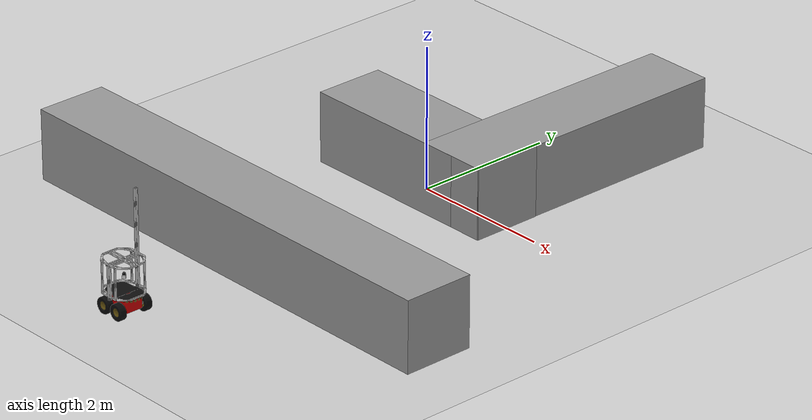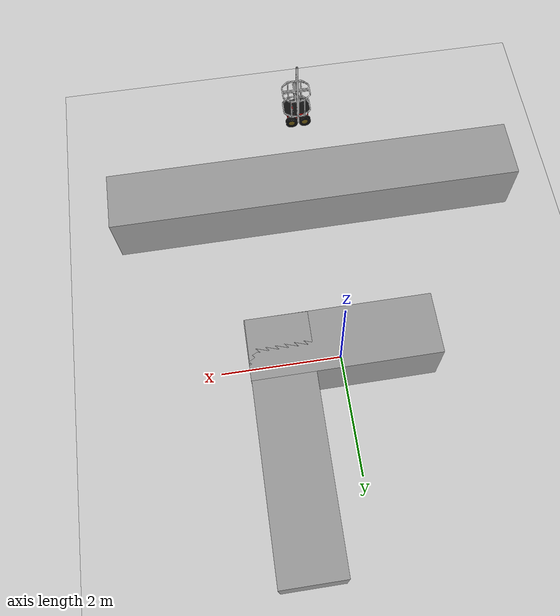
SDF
<sdf version="1.6">
 <world name="default">
  <light name="sun" type="directional">
   <pose>0 0 10 0 -0 0</pose>
   <diffuse>0.8 0.8 0.8 1</diffuse>
   <specular>0.2 0.2 0.2 1</specular>
   <attenuation>
    <range>1000</range>
    <constant>0.9</constant>
    <linear>0.01</linear>
    <quadratic>0.001</quadratic>
   </attenuation>
   <direction>-0.5 0.1 -0.9</direction>
  </light>
  <model name="ground_plane">
   <static>1</static>
   <link name="link">
    <collision name="collision">
     <geometry><plane><normal>0 0 1</normal><size>100 100</size></plane></geometry>
     <surface>
      <contact><collide_bitmask>65535</collide_bitmask></contact>
      <friction><ode><mu>100</mu><mu2>50</mu2></ode></friction>
     </surface>
    </collision>
    <visual name="visual">
     <cast_shadows>0</cast_shadows>
     <geometry><plane><normal>0 0 1</normal><size>100 100</size></plane></geometry>
     <material>
      <script><uri>file://media/materials/scripts/gazebo.material</uri><name>Gazebo/Grey</name></script>
     </material>
    </visual>
   </link>
  </model>
  <gravity>0 0 -9.8</gravity>
  <magnetic_field>6e-06 2.3e-05 -4.2e-05</magnetic_field>
  <atmosphere type="adiabatic"/>
  <physics name="default_physics" default="0" type="ode">
   <max_step_size>0.001</max_step_size>
   <real_time_factor>1</real_time_factor>
   <real_time_update_rate>1000</real_time_update_rate>
  </physics>
  <scene><ambient>0.4 0.4 0.4 1</ambient><background>0.7 0.7 0.7 1</background><shadows>1</shadows></scene>
  <audio><device>default</device></audio>
  <spherical_coordinates>
   <surface_model>EARTH_WGS84</surface_model>
   <latitude_deg>0</latitude_deg>
   <longitude_deg>0</longitude_deg>
   <elevation>0</elevation>
   <heading_deg>0</heading_deg>
  </spherical_coordinates>
  <model name="pioneer3at_rc2016_robot_with_flame">
   <link name="base_link">
    <inertial>
     <pose>0.001277 0.003784 0.183869 0 -0 0</pose>
     <mass>14.27</mass>
     <inertia>
      <ixx>0.192883</ixx>
      <ixy>-0.00357616</ixy>
      <ixz>-0.0064908</ixz>
      <iyy>0.371329</iyy>
      <iyz>-0.019232</iyz>
      <izz>0.4098</izz>
     </inertia>
    </inertial>
    <sensor name="hokuyo" type="ray">
     <always_on>0</always_on>
     <update_rate>30</update_rate>
     <visualize>1</visualize>
     <ray>
      <scan>
       <horizontal>
        <samples>180</samples>
        <resolution>1</resolution>
        <min_angle>-3.1415</min_angle>
        <max_angle>3.1415</max_angle>
       </horizontal>
       <vertical><samples>1</samples><min_angle>0</min_angle><max_angle>0</max_angle></vertical>
      </scan>
      <range><min>0.08</min><max>2</max><resolution>0.01</resolution></range>
     </ray>
     <plugin name="gazebo_ros_hokuyo_controller" filename="libgazebo_ros_laser.so">
      <gaussianNoise>0.005</gaussianNoise>
      <alwaysOn>0</alwaysOn>
      <updateRate>30</updateRate>
      <topicName>hokuyo</topicName>
      <frameName>hokuyo_frame</frameName>
      <robotNamespace>robot</robotNamespace>
     </plugin>
     <pose>0 0 0.5 0 -0 0</pose>
    </sensor>
    <visual name="base_link_fixed_joint_lump__base_visual_visual">
     <pose>0 0 0.18 0 -0 0</pose>
     <geometry><mesh><scale>1 1 1</scale><uri>model://pioneer3at/meshes/chassis.dae</uri></mesh></geometry>
    </visual>
    <visual name="base_link_fixed_joint_lump__flame_visual_2">
     <pose>0 -0.241 0.29 1.5707 0 1.5707</pose>
     <geometry>
      <mesh><scale>1 1 1</scale><uri>/home/z_lin/p3at/src/p3at/p3at_description/meshes/flame 0.01.stl</uri></mesh>
     </geometry>
    </visual>
    <visual name="base_link_fixed_joint_lump__hokuyo_frame_visual_3">
     <pose>0 0 0.5 0 -0 0.785398</pose>
     <geometry><mesh><scale>1 1 1</scale><uri>model://hokuyo/meshes/hokuyo.dae</uri></mesh></geometry>
     <material><script><uri>__default__</uri><name>__default__</name></script></material>
    </visual>
    <collision name="base_link_collision">
     <pose>0 0 0.18 0 -0 0</pose>
     <geometry><box><size>0.501 0.3 0.19</size></box></geometry>
     <surface>
      <friction>
       <ode><mu>1</mu><mu2>1</mu2><fdir1>0 0 0</fdir1><slip1>0</slip1><slip2>0</slip2></ode>
       <torsional>
        <coefficient>1</coefficient>
        <patch_radius>0</patch_radius>
        <surface_radius>0</surface_radius>
        <use_patch_radius>1</use_patch_radius>
        <ode><slip>0</slip></ode>
       </torsional>
      </friction>
      <bounce><restitution_coefficient>0</restitution_coefficient><threshold>1e+06</threshold></bounce>
      <contact>
       <collide_without_contact>0</collide_without_contact>
       <collide_without_contact_bitmask>1</collide_without_contact_bitmask>
       <collide_bitmask>1</collide_bitmask>
       <ode>
        <soft_cfm>0</soft_cfm>
        <soft_erp>0.2</soft_erp>
        <kp>1e+13</kp>
        <kd>1</kd>
        <max_vel>0.01</max_vel>
        <min_depth>0</min_depth>
       </ode>
       <bullet>
        <split_impulse>1</split_impulse>
        <split_impulse_penetration_threshold>-0.01</split_impulse_penetration_threshold>
        <soft_cfm>0</soft_cfm>
        <soft_erp>0.2</soft_erp>
        <kp>1e+13</kp>
        <kd>1</kd>
       </bullet>
      </contact>
     </surface>
    </collision>
    <collision name="base_link_fixed_joint_lump__flame_collision_2">
     <pose>0 -0.241 0.29 0 -0 0</pose>
     <geometry><box><size>0 0 0</size></box></geometry>
     <surface>
      <friction>
       <ode><mu>1</mu><mu2>1</mu2><fdir1>0 0 0</fdir1><slip1>0</slip1><slip2>0</slip2></ode>
       <torsional>
        <coefficient>1</coefficient>
        <patch_radius>0</patch_radius>
        <surface_radius>0</surface_radius>
        <use_patch_radius>1</use_patch_radius>
        <ode><slip>0</slip></ode>
       </torsional>
      </friction>
      <bounce><restitution_coefficient>0</restitution_coefficient><threshold>1e+06</threshold></bounce>
      <contact>
       <collide_without_contact>0</collide_without_contact>
       <collide_without_contact_bitmask>1</collide_without_contact_bitmask>
       <collide_bitmask>1</collide_bitmask>
       <ode>
        <soft_cfm>0</soft_cfm>
        <soft_erp>0.2</soft_erp>
        <kp>1e+13</kp>
        <kd>1</kd>
        <max_vel>0.01</max_vel>
        <min_depth>0</min_depth>
       </ode>
       <bullet>
        <split_impulse>1</split_impulse>
        <split_impulse_penetration_threshold>-0.01</split_impulse_penetration_threshold>
        <soft_cfm>0</soft_cfm>
        <soft_erp>0.2</soft_erp>
        <kp>1e+13</kp>
        <kd>1</kd>
       </bullet>
      </contact>
     </surface>
    </collision>
    <collision name="base_link_fixed_joint_lump__hokuyo_frame_collision_3">
     <pose>0 0 0.5 0 -0 0.785398</pose>
     <geometry><box><size>0.058 0.058 0.087</size></box></geometry>
     <surface>
      <friction>
       <ode><mu>1</mu><mu2>1</mu2><fdir1>0 0 0</fdir1><slip1>0</slip1><slip2>0</slip2></ode>
       <torsional>
        <coefficient>1</coefficient>
        <patch_radius>0</patch_radius>
        <surface_radius>0</surface_radius>
        <use_patch_radius>1</use_patch_radius>
        <ode><slip>0</slip></ode>
       </torsional>
      </friction>
      <bounce><restitution_coefficient>0</restitution_coefficient><threshold>1e+06</threshold></bounce>
      <contact>
       <collide_without_contact>0</collide_without_contact>
       <collide_without_contact_bitmask>1</collide_without_contact_bitmask>
       <collide_bitmask>1</collide_bitmask>
       <ode>
        <soft_cfm>0</soft_cfm>
        <soft_erp>0.2</soft_erp>
        <kp>1e+13</kp>
        <kd>1</kd>
        <max_vel>0.01</max_vel>
        <min_depth>0</min_depth>
       </ode>
       <bullet>
        <split_impulse>1</split_impulse>
        <split_impulse_penetration_threshold>-0.01</split_impulse_penetration_threshold>
        <soft_cfm>0</soft_cfm>
        <soft_erp>0.2</soft_erp>
        <kp>1e+13</kp>
        <kd>1</kd>
       </bullet>
      </contact>
     </surface>
    </collision>
   </link>
   <link name="p3at_front_left_wheel">
    <pose>0.125 0.201 0.11 1.5707 -0 0</pose>
    <inertial>
     <mass>1.5</mass>
     <inertia>
      <ixx>0.00524062</ixx>
      <ixy>0</ixy>
      <ixz>0</ixz>
      <iyy>0.00524062</iyy>
      <iyz>0</iyz>
      <izz>0.009075</izz>
     </inertia>
    </inertial>
    <visual name="p3at_front_left_wheel_fixed_joint_lump__visual_visual">
     <geometry><mesh><scale>1 1 1</scale><uri>model://pioneer3at/meshes/wheel.dae</uri></mesh></geometry>
    </visual>
    <collision name="p3at_front_left_wheel_collision">
     <geometry><cylinder><radius>0.11</radius><length>0.075</length></cylinder></geometry>
     <surface>
      <friction>
       <ode><mu>1</mu><mu2>1</mu2><fdir1>0 0 0</fdir1><slip1>0</slip1><slip2>0</slip2></ode>
       <torsional>
        <coefficient>1</coefficient>
        <patch_radius>0</patch_radius>
        <surface_radius>0</surface_radius>
        <use_patch_radius>1</use_patch_radius>
        <ode><slip>0</slip></ode>
       </torsional>
      </friction>
      <bounce><restitution_coefficient>0</restitution_coefficient><threshold>1e+06</threshold></bounce>
      <contact>
       <collide_without_contact>0</collide_without_contact>
       <collide_without_contact_bitmask>1</collide_without_contact_bitmask>
       <collide_bitmask>1</collide_bitmask>
       <ode>
        <soft_cfm>0</soft_cfm>
        <soft_erp>0.2</soft_erp>
        <kp>1e+13</kp>
        <kd>1</kd>
        <max_vel>0.01</max_vel>
        <min_depth>0</min_depth>
       </ode>
       <bullet>
        <split_impulse>1</split_impulse>
        <split_impulse_penetration_threshold>-0.01</split_impulse_penetration_threshold>
        <soft_cfm>0</soft_cfm>
        <soft_erp>0.2</soft_erp>
        <kp>1e+13</kp>
        <kd>1</kd>
       </bullet>
      </contact>
     </surface>
    </collision>
   </link>
   <link name="p3at_front_right_wheel">
    <pose>0.125 -0.201 0.11 1.5707 -0 0</pose>
    <inertial>
     <mass>1.5</mass>
     <inertia>
      <ixx>0.00524062</ixx>
      <ixy>0</ixy>
      <ixz>0</ixz>
      <iyy>0.00524062</iyy>
      <iyz>0</iyz>
      <izz>0.009075</izz>
     </inertia>
    </inertial>
    <visual name="p3at_front_right_wheel_fixed_joint_lump__visual_visual">
     <geometry><mesh><scale>1 1 1</scale><uri>model://pioneer3at/meshes/wheel.dae</uri></mesh></geometry>
    </visual>
    <collision name="p3at_front_right_wheel_collision">
     <geometry><cylinder><radius>0.11</radius><length>0.075</length></cylinder></geometry>
     <surface>
      <friction>
       <ode><mu>1</mu><mu2>1</mu2><fdir1>0 0 0</fdir1><slip1>0</slip1><slip2>0</slip2></ode>
       <torsional>
        <coefficient>1</coefficient>
        <patch_radius>0</patch_radius>
        <surface_radius>0</surface_radius>
        <use_patch_radius>1</use_patch_radius>
        <ode><slip>0</slip></ode>
       </torsional>
      </friction>
      <bounce><restitution_coefficient>0</restitution_coefficient><threshold>1e+06</threshold></bounce>
      <contact>
       <collide_without_contact>0</collide_without_contact>
       <collide_without_contact_bitmask>1</collide_without_contact_bitmask>
       <collide_bitmask>1</collide_bitmask>
       <ode>
        <soft_cfm>0</soft_cfm>
        <soft_erp>0.2</soft_erp>
        <kp>1e+13</kp>
        <kd>1</kd>
        <max_vel>0.01</max_vel>
        <min_depth>0</min_depth>
       </ode>
       <bullet>
        <split_impulse>1</split_impulse>
        <split_impulse_penetration_threshold>-0.01</split_impulse_penetration_threshold>
        <soft_cfm>0</soft_cfm>
        <soft_erp>0.2</soft_erp>
        <kp>1e+13</kp>
        <kd>1</kd>
       </bullet>
      </contact>
     </surface>
    </collision>
   </link>
   <link name="p3at_rear_left_wheel">
    <pose>-0.125 0.201 0.11 1.5707 -0 0</pose>
    <inertial>
     <mass>1.5</mass>
     <inertia>
      <ixx>0.00524062</ixx>
      <ixy>0</ixy>
      <ixz>0</ixz>
      <iyy>0.00524062</iyy>
      <iyz>0</iyz>
      <izz>0.009075</izz>
     </inertia>
    </inertial>
    <visual name="p3at_rear_left_wheel_fixed_joint_lump__visual_visual">
     <geometry><mesh><scale>1 1 1</scale><uri>model://pioneer3at/meshes/wheel.dae</uri></mesh></geometry>
    </visual>
    <collision name="p3at_rear_left_wheel_collision">
     <geometry><cylinder><radius>0.11</radius><length>0.075</length></cylinder></geometry>
     <surface>
      <friction>
       <ode><mu>1</mu><mu2>1</mu2><fdir1>0 0 0</fdir1><slip1>0</slip1><slip2>0</slip2></ode>
       <torsional>
        <coefficient>1</coefficient>
        <patch_radius>0</patch_radius>
        <surface_radius>0</surface_radius>
        <use_patch_radius>1</use_patch_radius>
        <ode><slip>0</slip></ode>
       </torsional>
      </friction>
      <bounce><restitution_coefficient>0</restitution_coefficient><threshold>1e+06</threshold></bounce>
      <contact>
       <collide_without_contact>0</collide_without_contact>
       <collide_without_contact_bitmask>1</collide_without_contact_bitmask>
       <collide_bitmask>1</collide_bitmask>
       <ode>
        <soft_cfm>0</soft_cfm>
        <soft_erp>0.2</soft_erp>
        <kp>1e+13</kp>
        <kd>1</kd>
        <max_vel>0.01</max_vel>
        <min_depth>0</min_depth>
       </ode>
       <bullet>
        <split_impulse>1</split_impulse>
        <split_impulse_penetration_threshold>-0.01</split_impulse_penetration_threshold>
        <soft_cfm>0</soft_cfm>
        <soft_erp>0.2</soft_erp>
        <kp>1e+13</kp>
        <kd>1</kd>
       </bullet>
      </contact>
     </surface>
    </collision>
   </link>
   <link name="p3at_rear_right_wheel">
    <pose>-0.125 -0.201 0.11 1.5707 -0 0</pose>
    <inertial>
     <mass>1.5</mass>
     <inertia>
      <ixx>0.00524062</ixx>
      <ixy>0</ixy>
      <ixz>0</ixz>
      <iyy>0.00524062</iyy>
      <iyz>0</iyz>
      <izz>0.009075</izz>
     </inertia>
    </inertial>
    <visual name="p3at_rear_right_wheel_fixed_joint_lump__visual_visual">
     <geometry><mesh><scale>1 1 1</scale><uri>model://pioneer3at/meshes/wheel.dae</uri></mesh></geometry>
    </visual>
    <collision name="p3at_rear_right_wheel_collision">
     <geometry><cylinder><radius>0.11</radius><length>0.075</length></cylinder></geometry>
     <surface>
      <friction>
       <ode><mu>1</mu><mu2>1</mu2><fdir1>0 0 0</fdir1><slip1>0</slip1><slip2>0</slip2></ode>
       <torsional>
        <coefficient>1</coefficient>
        <patch_radius>0</patch_radius>
        <surface_radius>0</surface_radius>
        <use_patch_radius>1</use_patch_radius>
        <ode><slip>0</slip></ode>
       </torsional>
      </friction>
      <bounce><restitution_coefficient>0</restitution_coefficient><threshold>1e+06</threshold></bounce>
      <contact>
       <collide_without_contact>0</collide_without_contact>
       <collide_without_contact_bitmask>1</collide_without_contact_bitmask>
       <collide_bitmask>1</collide_bitmask>
       <ode>
        <soft_cfm>0</soft_cfm>
        <soft_erp>0.2</soft_erp>
        <kp>1e+13</kp>
        <kd>1</kd>
        <max_vel>0.01</max_vel>
        <min_depth>0</min_depth>
       </ode>
       <bullet>
        <split_impulse>1</split_impulse>
        <split_impulse_penetration_threshold>-0.01</split_impulse_penetration_threshold>
        <soft_cfm>0</soft_cfm>
        <soft_erp>0.2</soft_erp>
        <kp>1e+13</kp>
        <kd>1</kd>
       </bullet>
      </contact>
     </surface>
    </collision>
   </link>
   <joint name="p3at_front_left_wheel_joint" type="revolute">
    <parent>base_link</parent>
    <child>p3at_front_left_wheel</child>
    <axis>
     <xyz>0 1 -9.6e-05</xyz>
     <use_parent_model_frame>1</use_parent_model_frame>
     <limit><lower>-1e+16</lower><upper>1e+16</upper><effort>-1</effort><velocity>-1</velocity></limit>
     <dynamics>
      <spring_reference>0</spring_reference>
      <spring_stiffness>0</spring_stiffness>
      <damping>0</damping>
      <friction>0</friction>
     </dynamics>
    </axis>
    <physics>
     <ode><limit><cfm>0</cfm><erp>0.2</erp></limit><suspension><cfm>0</cfm><erp>0.2</erp></suspension></ode>
    </physics>
   </joint>
   <joint name="p3at_front_right_wheel_joint" type="revolute">
    <parent>base_link</parent>
    <child>p3at_front_right_wheel</child>
    <axis>
     <xyz>0 1 -9.6e-05</xyz>
     <use_parent_model_frame>1</use_parent_model_frame>
     <limit><lower>-1e+16</lower><upper>1e+16</upper><effort>-1</effort><velocity>-1</velocity></limit>
     <dynamics>
      <spring_reference>0</spring_reference>
      <spring_stiffness>0</spring_stiffness>
      <damping>0</damping>
      <friction>0</friction>
     </dynamics>
    </axis>
    <physics>
     <ode><limit><cfm>0</cfm><erp>0.2</erp></limit><suspension><cfm>0</cfm><erp>0.2</erp></suspension></ode>
    </physics>
   </joint>
   <joint name="p3at_rear_left_wheel_joint" type="revolute">
    <parent>base_link</parent>
    <child>p3at_rear_left_wheel</child>
    <axis>
     <xyz>0 1 -9.6e-05</xyz>
     <use_parent_model_frame>1</use_parent_model_frame>
     <limit><lower>-1e+16</lower><upper>1e+16</upper><effort>-1</effort><velocity>-1</velocity></limit>
     <dynamics>
      <spring_reference>0</spring_reference>
      <spring_stiffness>0</spring_stiffness>
      <damping>0</damping>
      <friction>0</friction>
     </dynamics>
    </axis>
    <physics>
     <ode><limit><cfm>0</cfm><erp>0.2</erp></limit><suspension><cfm>0</cfm><erp>0.2</erp></suspension></ode>
    </physics>
   </joint>
   <joint name="p3at_rear_right_wheel_joint" type="revolute">
    <parent>base_link</parent>
    <child>p3at_rear_right_wheel</child>
    <axis>
     <xyz>0 1 -9.6e-05</xyz>
     <use_parent_model_frame>1</use_parent_model_frame>
     <limit><lower>-1e+16</lower><upper>1e+16</upper><effort>-1</effort><velocity>-1</velocity></limit>
     <dynamics>
      <spring_reference>0</spring_reference>
      <spring_stiffness>0</spring_stiffness>
      <damping>0</damping>
      <friction>0</friction>
     </dynamics>
    </axis>
    <physics>
     <ode><limit><cfm>0</cfm><erp>0.2</erp></limit><suspension><cfm>0</cfm><erp>0.2</erp></suspension></ode>
    </physics>
   </joint>
   <static>0</static>
   <plugin name="skid_steer_drive_controller" filename="libgazebo_ros_skid_steer_drive.so">
    <updateRate>100.0</updateRate>
    <robotNamespace>robot</robotNamespace>
    <leftFrontJoint>p3at_front_left_wheel_joint</leftFrontJoint>
    <rightFrontJoint>p3at_front_right_wheel_joint</rightFrontJoint>
    <leftRearJoint>p3at_rear_left_wheel_joint</leftRearJoint>
    <rightRearJoint>p3at_rear_right_wheel_joint</rightRearJoint>
    <wheelSeparation>0.4</wheelSeparation>
    <wheelDiameter>0.215</wheelDiameter>
    <robotBaseFrame>base_link</robotBaseFrame>
    <torque>200</torque>
    <commandTopic>cmd_vel</commandTopic>
    <odometryTopic>odom</odometryTopic>
    <odometryFrame>odom</odometryFrame>
    <broadcastTF>1</broadcastTF>
    <covariance_x>0.0001</covariance_x>
    <covariance_y>0.0001</covariance_y>
    <covariance_yaw>0.01</covariance_yaw>
   </plugin>
   <pose>0 -5 0 0 -0 0</pose>
  </model>
  <model name="gototar">
   <link name="link">
    <inertial>
     <mass>1</mass>
     <inertia>
      <ixx>0.166667</ixx>
      <ixy>0</ixy>
      <ixz>0</ixz>
      <iyy>0.166667</iyy>
      <iyz>0</iyz>
      <izz>0.166667</izz>
     </inertia>
    </inertial>
    <pose>0 -3 0 0 -0 0</pose>
    <visual name="visual">
     <geometry><box><size>7 1 1</size></box></geometry>
     <material>
      <script><name>Gazebo/Grey</name><uri>file://media/materials/scripts/gazebo.material</uri></script>
      <shader type="vertex"><normal_map>__default__</normal_map></shader>
      <ambient>0.3 0.3 0.3 1</ambient>
      <diffuse>0.7 0.7 0.7 1</diffuse>
      <specular>0.01 0.01 0.01 1</specular>
      <emissive>0 0 0 1</emissive>
     </material>
    </visual>
    <collision name="collision">
     <geometry><box><size>7 1 1</size></box></geometry>
     <surface>
      <friction>
       <ode><mu>1</mu><mu2>1</mu2><fdir1>0 0 0</fdir1><slip1>0</slip1><slip2>0</slip2></ode>
       <torsional>
        <coefficient>1</coefficient>
        <patch_radius>0</patch_radius>
        <surface_radius>0</surface_radius>
        <use_patch_radius>1</use_patch_radius>
        <ode><slip>0</slip></ode>
       </torsional>
      </friction>
      <bounce><restitution_coefficient>0</restitution_coefficient><threshold>1e+06</threshold></bounce>
      <contact>
       <collide_without_contact>0</collide_without_contact>
       <collide_without_contact_bitmask>1</collide_without_contact_bitmask>
       <collide_bitmask>1</collide_bitmask>
       <ode>
        <soft_cfm>0</soft_cfm>
        <soft_erp>0.2</soft_erp>
        <kp>1e+13</kp>
        <kd>1</kd>
        <max_vel>0.01</max_vel>
        <min_depth>0</min_depth>
       </ode>
       <bullet>
        <split_impulse>1</split_impulse>
        <split_impulse_penetration_threshold>-0.01</split_impulse_penetration_threshold>
        <soft_cfm>0</soft_cfm>
        <soft_erp>0.2</soft_erp>
        <kp>1e+13</kp>
        <kd>1</kd>
       </bullet>
      </contact>
     </surface>
    </collision>
   </link>
   <link name="link_1">
    <inertial>
     <mass>1</mass>
     <inertia>
      <ixx>0.166667</ixx>
      <ixy>0</ixy>
      <ixz>0</ixz>
      <iyy>0.166667</iyy>
      <iyz>0</iyz>
      <izz>0.166667</izz>
     </inertia>
    </inertial>
    <visual name="visual">
     <geometry><box><size>3 1 1</size></box></geometry>
     <material>
      <lighting>1</lighting>
      <script><uri>file://media/materials/scripts/gazebo.material</uri><name>Gazebo/Grey</name></script>
      <shader type="vertex"><normal_map>__default__</normal_map></shader>
      <ambient>0.3 0.3 0.3 1</ambient>
      <diffuse>0.7 0.7 0.7 1</diffuse>
      <specular>0.01 0.01 0.01 1</specular>
      <emissive>0 0 0 1</emissive>
     </material>
    </visual>
    <collision name="collision">
     <geometry><box><size>3 1 1</size></box></geometry>
     <surface>
      <friction>
       <ode><mu>1</mu><mu2>1</mu2><fdir1>0 0 0</fdir1><slip1>0</slip1><slip2>0</slip2></ode>
       <torsional>
        <coefficient>1</coefficient>
        <patch_radius>0</patch_radius>
        <surface_radius>0</surface_radius>
        <use_patch_radius>1</use_patch_radius>
        <ode><slip>0</slip></ode>
       </torsional>
      </friction>
      <bounce><restitution_coefficient>0</restitution_coefficient><threshold>1e+06</threshold></bounce>
      <contact>
       <collide_without_contact>0</collide_without_contact>
       <collide_without_contact_bitmask>1</collide_without_contact_bitmask>
       <collide_bitmask>1</collide_bitmask>
       <ode>
        <soft_cfm>0</soft_cfm>
        <soft_erp>0.2</soft_erp>
        <kp>1e+13</kp>
        <kd>1</kd>
        <max_vel>0.01</max_vel>
        <min_depth>0</min_depth>
       </ode>
       <bullet>
        <split_impulse>1</split_impulse>
        <split_impulse_penetration_threshold>-0.01</split_impulse_penetration_threshold>
        <soft_cfm>0</soft_cfm>
        <soft_erp>0.2</soft_erp>
        <kp>1e+13</kp>
        <kd>1</kd>
       </bullet>
      </contact>
     </surface>
    </collision>
   </link>
   <link name="link_1_clone">
    <inertial>
     <mass>1</mass>
     <inertia>
      <ixx>0.166667</ixx>
      <ixy>0</ixy>
      <ixz>0</ixz>
      <iyy>0.166667</iyy>
      <iyz>0</iyz>
      <izz>0.166667</izz>
     </inertia>
    </inertial>
    <pose>1 1.5 0 0 0 -1.57762</pose>
    <visual name="visual">
     <geometry><box><size>4 1 1</size></box></geometry>
     <material>
      <lighting>1</lighting>
      <script><uri>file://media/materials/scripts/gazebo.material</uri><name>Gazebo/Grey</name></script>
      <shader type="vertex"><normal_map>__default__</normal_map></shader>
      <ambient>0.3 0.3 0.3 1</ambient>
      <diffuse>0.7 0.7 0.7 1</diffuse>
      <specular>0.01 0.01 0.01 1</specular>
      <emissive>0 0 0 1</emissive>
     </material>
    </visual>
    <collision name="collision">
     <geometry><box><size>4 1 1</size></box></geometry>
     <surface>
      <friction>
       <ode><mu>1</mu><mu2>1</mu2><fdir1>0 0 0</fdir1><slip1>0</slip1><slip2>0</slip2></ode>
       <torsional>
        <coefficient>1</coefficient>
        <patch_radius>0</patch_radius>
        <surface_radius>0</surface_radius>
        <use_patch_radius>1</use_patch_radius>
        <ode><slip>0</slip></ode>
       </torsional>
      </friction>
      <bounce><restitution_coefficient>0</restitution_coefficient><threshold>1e+06</threshold></bounce>
      <contact>
       <collide_without_contact>0</collide_without_contact>
       <collide_without_contact_bitmask>1</collide_without_contact_bitmask>
       <collide_bitmask>1</collide_bitmask>
       <ode>
        <soft_cfm>0</soft_cfm>
        <soft_erp>0.2</soft_erp>
        <kp>1e+13</kp>
        <kd>1</kd>
        <max_vel>0.01</max_vel>
        <min_depth>0</min_depth>
       </ode>
       <bullet>
        <split_impulse>1</split_impulse>
        <split_impulse_penetration_threshold>-0.01</split_impulse_penetration_threshold>
        <soft_cfm>0</soft_cfm>
        <soft_erp>0.2</soft_erp>
        <kp>1e+13</kp>
        <kd>1</kd>
       </bullet>
      </contact>
     </surface>
    </collision>
   </link>
   <joint name="link_JOINT_0" type="fixed">
    <parent>link</parent>
    <child>link_1</child>
    <physics>
     <ode><limit><cfm>0</cfm><erp>0.2</erp></limit><suspension><cfm>0</cfm><erp>0.2</erp></suspension></ode>
    </physics>
   </joint>
   <joint name="link_JOINT_1" type="fixed">
    <parent>link</parent>
    <child>link_1_clone</child>
    <physics>
     <ode><limit><cfm>0</cfm><erp>0.2</erp></limit><suspension><cfm>0</cfm><erp>0.2</erp></suspension></ode>
    </physics>
   </joint>
   <static>0</static>
   <pose>0 0 0.5 0 -0 0</pose>
  </model>
 </world>
</sdf>
